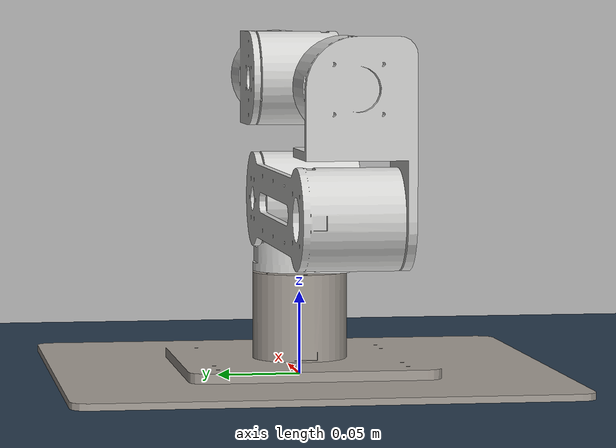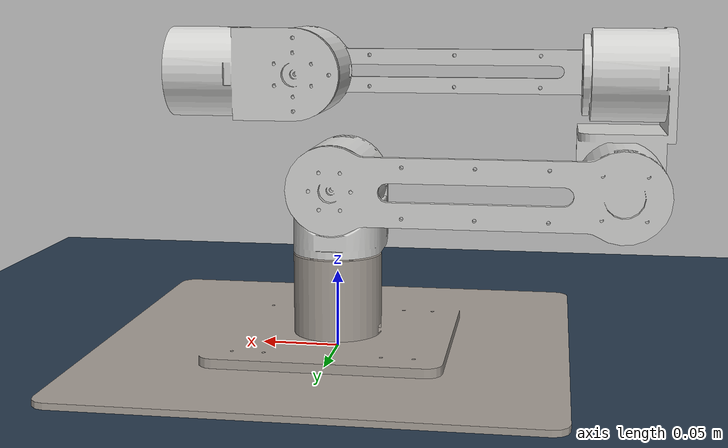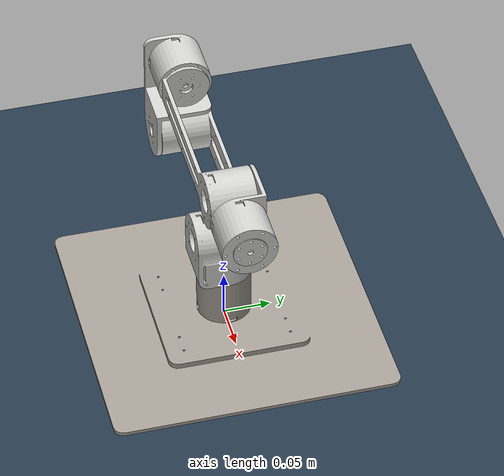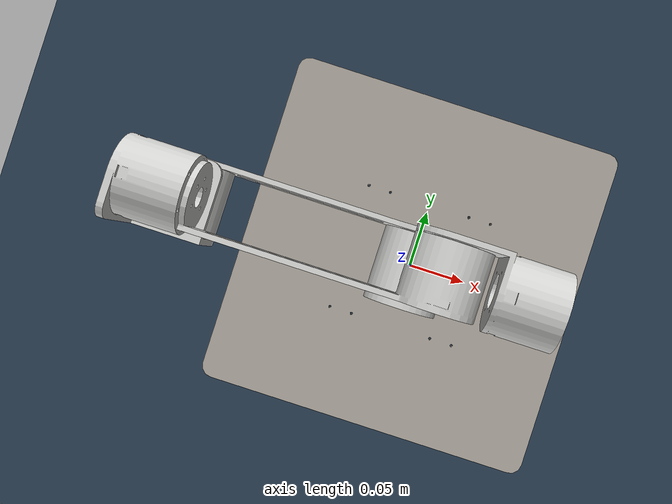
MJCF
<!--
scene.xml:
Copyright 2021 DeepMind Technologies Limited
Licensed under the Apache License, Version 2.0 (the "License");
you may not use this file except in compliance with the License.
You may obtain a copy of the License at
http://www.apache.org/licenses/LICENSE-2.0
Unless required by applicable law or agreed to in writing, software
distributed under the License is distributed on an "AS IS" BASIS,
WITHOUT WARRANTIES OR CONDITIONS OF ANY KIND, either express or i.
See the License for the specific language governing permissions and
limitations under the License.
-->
<mujoco model="robot_1">

  <include file="scene.xml"/>
  <compiler angle="radian" meshdir="../../meshes/"/>

  <asset>
    <mesh name="base_link" file="base_link.STL"/>
    <mesh name="link_1" file="link_1.STL"/>
    <mesh name="link_2" file="link_2.STL"/>
    <mesh name="link_3" file="link_3.STL"/>
    <mesh name="link_4" file="link_4.STL"/>
    <mesh name="link_5" file="link_5.STL"/>
    <mesh name="link_6" file="link_6.STL"/>
  </asset>

  <worldbody>
    <geom type="mesh" contype="0" conaffinity="0" group="1" density="0" rgba="0.647059 0.619608 0.588235 1" mesh="base_link"/>
    <geom type="mesh" rgba="0.647059 0.619608 0.588235 1" mesh="base_link"/>
    <body name="link_1" pos="0.00019927 -0.001877 0.10675">
      <inertial pos="-0.0001798 -0.0062513 -0.0147465" quat="0.995519 0.0944818 0.00032831 0.003958" mass="0.68958" diaginertia="0.000522302 0.000501989 0.000355309"/>
      <joint name="joint_1" pos="0 0 0" axis="0 0 1" range="-3 3" actuatorfrcrange="-27 27"/>
      <geom type="mesh" contype="0" conaffinity="0" group="1" density="0" rgba="0.827451 0.827451 0.819608 1" mesh="link_1"/>
      <geom type="mesh" rgba="0.827451 0.827451 0.819608 1" mesh="link_1"/>
      <body name="link_2" quat="0.707105 -0.707108 0 0">
        <inertial pos="-0.130904 0 0.0144901" quat="0 0.661662 0 0.749802" mass="0.637029" diaginertia="0.00350037 0.0034922 0.000259135"/>
        <joint name="joint_2" pos="0 0 0" axis="0 0 1" range="-3 3" actuatorfrcrange="-27 27"/>
        <geom type="mesh" contype="0" conaffinity="0" group="1" density="0" rgba="0.827451 0.827451 0.819608 1" mesh="link_2"/>
        <geom type="mesh" rgba="0.827451 0.827451 0.819608 1" mesh="link_2"/>
        <body name="link_3" pos="-0.18 0 0" quat="-3.67321e-06 -1 0 0">
          <inertial pos="-0.0058307 0.0495532 0.0062562" quat="0.734745 0.543882 -0.1794 0.363536" mass="0.702419" diaginertia="0.000915743 0.00089766 0.000333097"/>
          <joint name="joint_3" pos="0 0 0" axis="0 0 1" range="-3 3" actuatorfrcrange="-27 27"/>
          <geom type="mesh" contype="0" conaffinity="0" group="1" density="0" rgba="0.827451 0.827451 0.819608 1" mesh="link_3"/>
          <geom type="mesh" rgba="0.827451 0.827451 0.819608 1" mesh="link_3"/>
          <body name="link_4" pos="-0.00071398 0.071768 -0.00087296" quat="0.499998 0.5 0.500002 0.5">
            <inertial pos="0.0002323 0.0070423 0.160009" quat="0.999869 0.0161554 0 0" mass="0.52115" diaginertia="0.002666 0.00265165 0.00020815"/>
            <joint name="joint_4" pos="0 0 0" axis="0 0 1" range="-3 3" actuatorfrcrange="-7 7"/>
            <geom type="mesh" contype="0" conaffinity="0" group="1" density="0" rgba="0.827451 0.827451 0.819608 1" mesh="link_4"/>
            <geom type="mesh" rgba="0.827451 0.827451 0.819608 1" mesh="link_4"/>
            <body name="link_5" pos="0.00023228 -0.0022353 0.20325" quat="0.707105 -0.707108 0 0">
              <inertial pos="-2.94e-05 -0.0433495 -0.0048578" quat="0.59968 0.377138 -0.37585 0.597401" mass="0.473414" diaginertia="0.000466568 0.0004422 0.000194732"/>
              <joint name="joint_5" pos="0 0 0" axis="0 0 -1" range="-3 3" actuatorfrcrange="-7 7"/>
              <geom type="mesh" contype="0" conaffinity="0" group="1" density="0" rgba="0.827451 0.827451 0.819608 1" mesh="link_5"/>
              <geom type="mesh" rgba="0.827451 0.827451 0.819608 1" mesh="link_5"/>
              <body name="link_6" pos="-0.00023228 -0.061253 0.0014853" quat="0.707105 0.707108 0 0">
                <inertial pos="0.000232282 -6.28905e-11 0.0174195" quat="0.5 0.5 -0.5 0.5" mass="0.010251" diaginertia="1.58125e-06 8.93402e-07 8.93402e-07"/>
                <joint name="joint_6" pos="0 0 0" axis="0 0 1" range="-3 3" actuatorfrcrange="-7 7"/>
                <geom type="mesh" contype="0" conaffinity="0" group="1" density="0" rgba="0.827451 0.827451 0.819608 1" mesh="link_6"/>
                <geom type="mesh" rgba="0.827451 0.827451 0.819608 1" mesh="link_6"/>
              </body>
            </body>
          </body>
        </body>
      </body>
    </body>
  </worldbody>

    <default>
     <joint frictionloss="0.2"  damping="0.02"/>

  </default>

  <actuator>

    <motor name= "trq_ctrl_1" joint="joint_1" ctrllimited="true" ctrlrange="-30 30"/>
    <motor name= "trq_ctrl_2" joint="joint_2" ctrllimited="true" ctrlrange="-30 30"/>
    <motor name= "trq_ctrl_3" joint="joint_3" ctrllimited="true" ctrlrange="-30 30"/>
    <motor name= "trq_ctrl_4" joint="joint_4" ctrllimited="true" ctrlrange="-30 30"/>
    <motor name= "trq_ctrl_5" joint="joint_5" ctrllimited="true" ctrlrange="-7 7"/>
    <motor name= "trq_ctrl_6" joint="joint_6" ctrllimited="true" ctrlrange="-7 7"/>

  </actuator>

  <sensor>
    <jointpos name="joint_pos_1" joint="joint_1"/>
    <jointpos name="joint_pos_2" joint="joint_2"/>
    <jointpos name="joint_pos_3" joint="joint_3"/>
    <jointpos name="joint_pos_4" joint="joint_4"/>
    <jointpos name="joint_pos_5" joint="joint_5"/>
    <jointpos name="joint_pos_6" joint="joint_6"/>

    <jointvel name="joint_vel_1" joint="joint_1"/>
    <jointvel name="joint_vel_2" joint="joint_2"/>
    <jointvel name="joint_vel_3" joint="joint_3"/>
    <jointvel name="joint_vel_4" joint="joint_4"/>
    <jointvel name="joint_vel_5" joint="joint_5"/>
    <jointvel name="joint_vel_6" joint="joint_6"/>
  </sensor>

  <keyframe>
    <key name= "home" qpos="0 0 0 0 0 0"/>
    <key name= "pose_1" qpos="0 0.814 -0.922 0 0.565 -1"/>
  </keyframe>
</mujoco>

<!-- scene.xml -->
<mujoco>
  <compiler meshdir="asset" texturedir="asset"/>

  <statistic meansize=".05"/>

  <visual>
    <rgba haze="0.15 0.25 0.35 1"/>
    <quality shadowsize="4096"/>
    <map stiffness="700" shadowscale="0.5" fogstart="1" fogend="15" zfar="40" haze="1"/>
  </visual>

  <asset>
    <texture type="skybox" builtin="gradient" rgb1="0.3 0.5 0.7" rgb2="0 0 0" width="512" height="512"/>
    <texture name="texplane" type="2d" builtin="checker" rgb1=".2 .3 .4" rgb2=".1 0.15 0.2"
      width="512" height="512" mark="cross" markrgb=".8 .8 .8"/>

    <material name="matplane" reflectance="0.3" texture="texplane" texrepeat="10 10" texuniform="true"/>
  </asset>

  <worldbody>
    <light diffuse=".4 .4 .4" specular="0.1 0.1 0.1" pos="0 0 2.0" dir="0 0 -1" castshadow="false"/>
    <light directional="true" diffuse=".8 .8 .8" specular="0.2 0.2 0.2" pos="0 0 4" dir="0 0 -1"/>

    <geom name="ground" type="plane" size="0 0 1" pos="0 0 0" quat="1 0 0 0" material="matplane" condim="1"/>
  </worldbody>
</mujoco>
